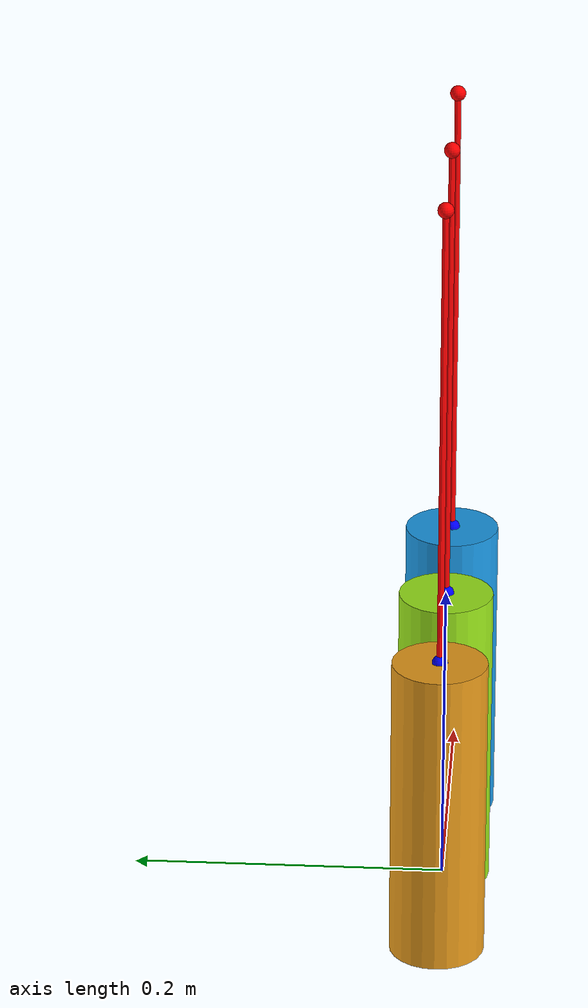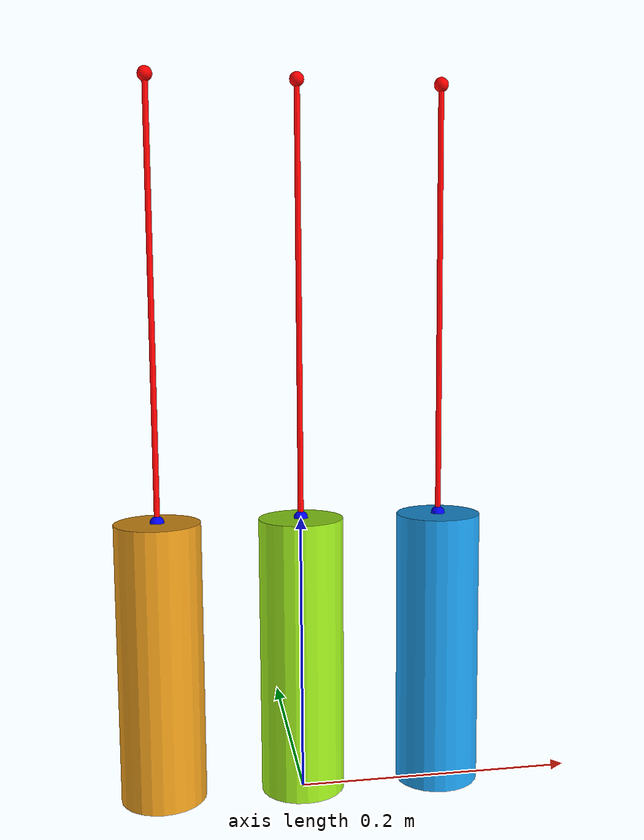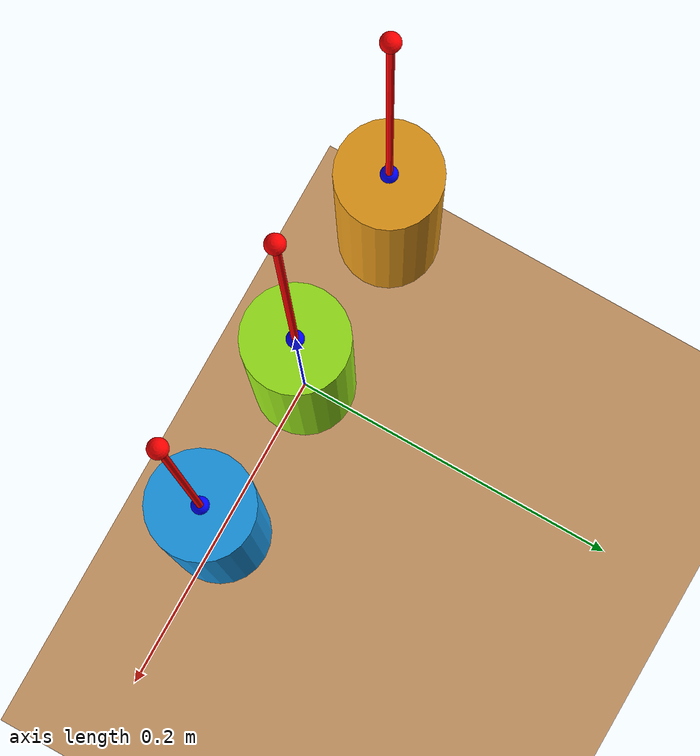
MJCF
<mujoco model="muscle_test">
  <compiler angle="degree"/>
  <option timestep="0.002"/>

  <default>
    <geom rgba="0.8 0.6 0.4 1" friction="1 0.1 0.1" condim="3"/>
    <joint damping="0.1"/>
    <tendon rgba="1 0 0 1" width="0.002"/>
    <muscle ctrllimited="true" ctrlrange="0 1"/>
  </default>

  <visual>
    <headlight diffuse="1 1 1" specular="0.5 0.5 0.5" active="1" />
  </visual>
  <asset>
    <texture name="plane" type="2d" builtin="checker" rgb1=".1 .1 .1" rgb2=".9 .9 .9"
            width="512" height="512" mark="cross" markrgb=".8 .8 .8" />
    <material name="plane" reflectance="0.3" texture="plane" texrepeat="1 1" texuniform="true" />
  </asset>
  <worldbody>
    <geom name="floor" type="plane" pos="0 0 -0.5" size="10 10 0.1" material="plane" condim="3"/>

    <body name="cylinder1" pos="-0.1 0 0.1">
      <joint name="freejoint1" type="free" pos="-0.1 0 0"/>
      <geom type="cylinder" size="0.03 0.1" rgba="0.9 0.6 0.1 1"/>
      <site name="attach_moving1" pos="0.0 0 0.1" size="0.005" rgba="0 0 1 1"/>
    </body>
    <body name="cylinder2" pos="0 0 0.1">
      <joint name="freejoint2" type="free" pos="0 0 0"/>
      <geom type="cylinder" size="0.03 0.1" rgba="0.6 0.9 0.1 1"/>
      <site name="attach_moving2" pos="0.0 0 0.1" size="0.005" rgba="0 0 1 1"/>
    </body>
    <body name="cylinder3" pos="0.1 0 0.1">
      <joint name="freejoint3" type="free" pos="0.1 0 0"/>
      <geom type="cylinder" size="0.03 0.1" rgba="0.1 0.6 0.9 1"/>
      <site name="attach_moving3" pos="0.0 0 0.1" size="0.005" rgba="0 0 1 1"/>
    </body>

    <site name="attach_fixed1" pos="-0.1 0 0.5" size="0.005" rgba="1 0 0 1"/>
    <site name="attach_fixed2" pos="-0 0 0.5" size="0.005" rgba="1 0 0 1"/>
    <site name="attach_fixed3" pos=" 0.1 0 0.5" size="0.005" rgba="1 0 0 1"/>

  </worldbody>

  <tendon>
    <spatial name="muscle_tendon1">
      <site site="attach_fixed1"/>
      <site site="attach_moving1"/>
    </spatial>
    <spatial name="muscle_tendon2">
      <site site="attach_fixed2"/>
      <site site="attach_moving2"/>
    </spatial>
    <spatial name="muscle_tendon3">
      <site site="attach_fixed3"/>
      <site site="attach_moving3"/>
    </spatial>
  </tendon>

  <actuator>
    <muscle name="puller1"
            tendon="muscle_tendon1"
            force="10"
            lengthrange="0.1 0.5"/>
    <muscle name="puller2"
            tendon="muscle_tendon2"
            force="20"
            lengthrange="0.1 0.5"/>
    <muscle name="puller3"
            tendon="muscle_tendon3"
            force="20"
            lengthrange="0.1 0.5"/>
  </actuator>
</mujoco>
